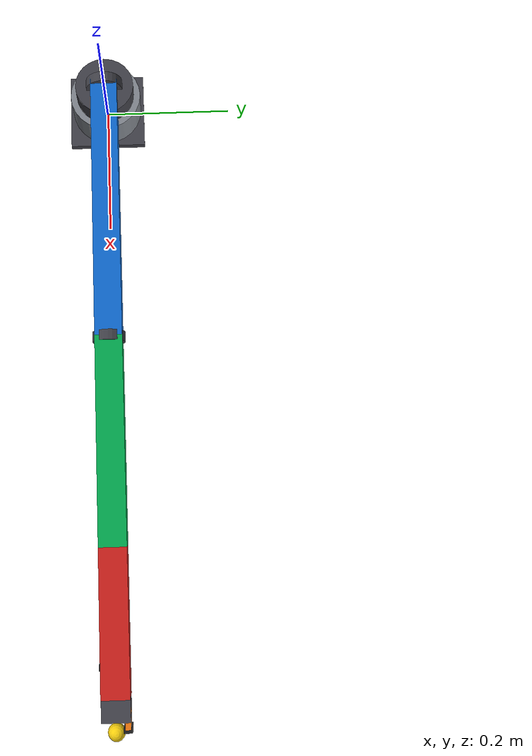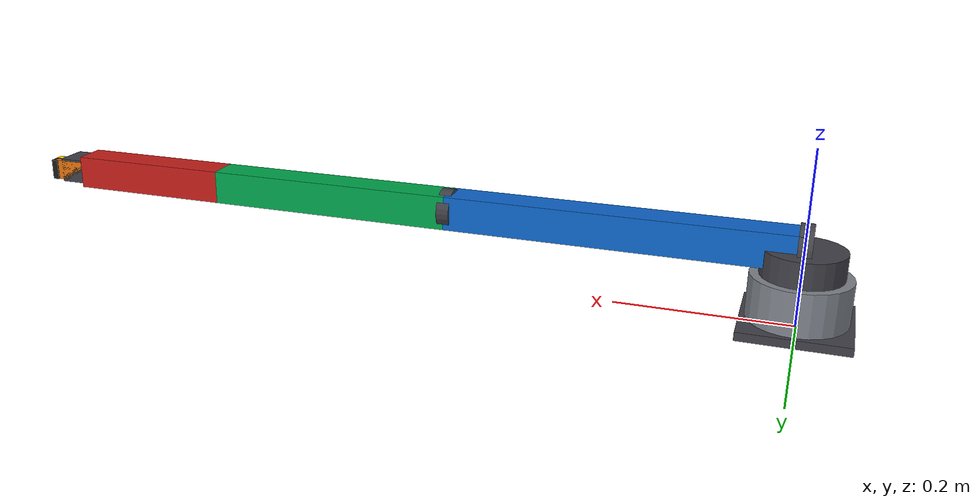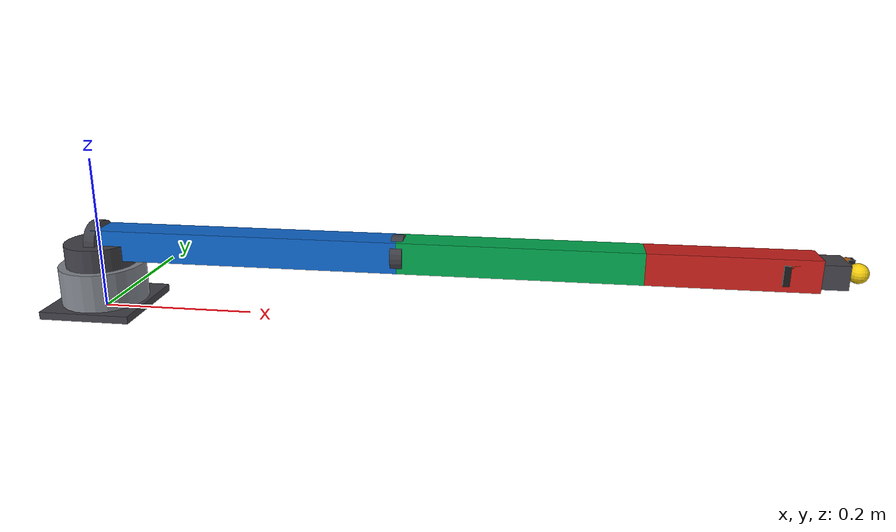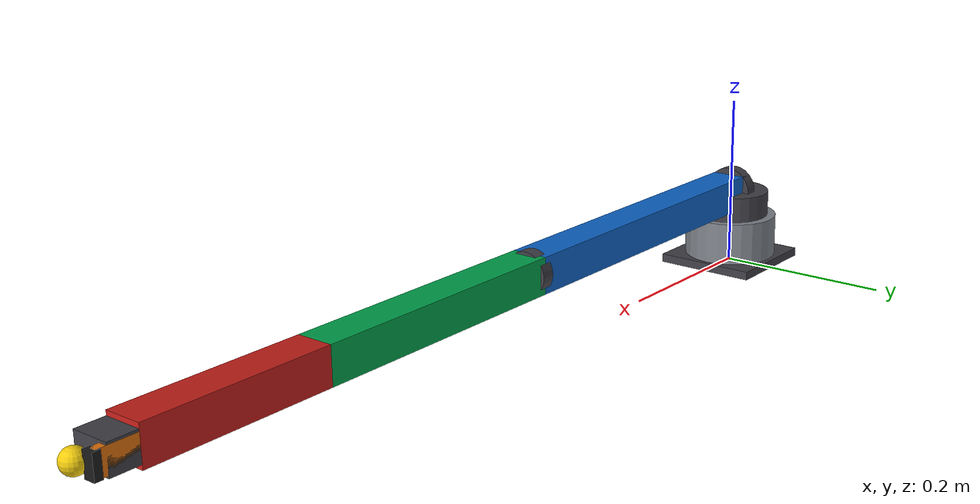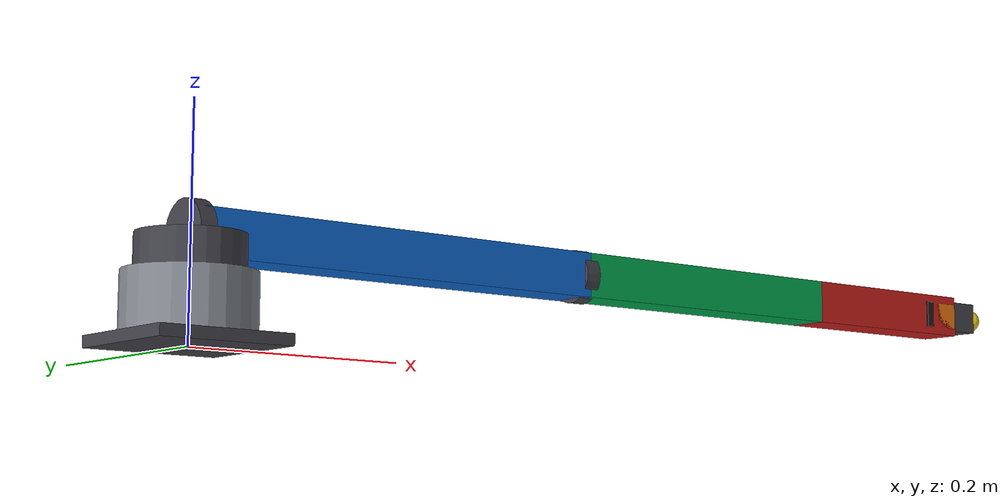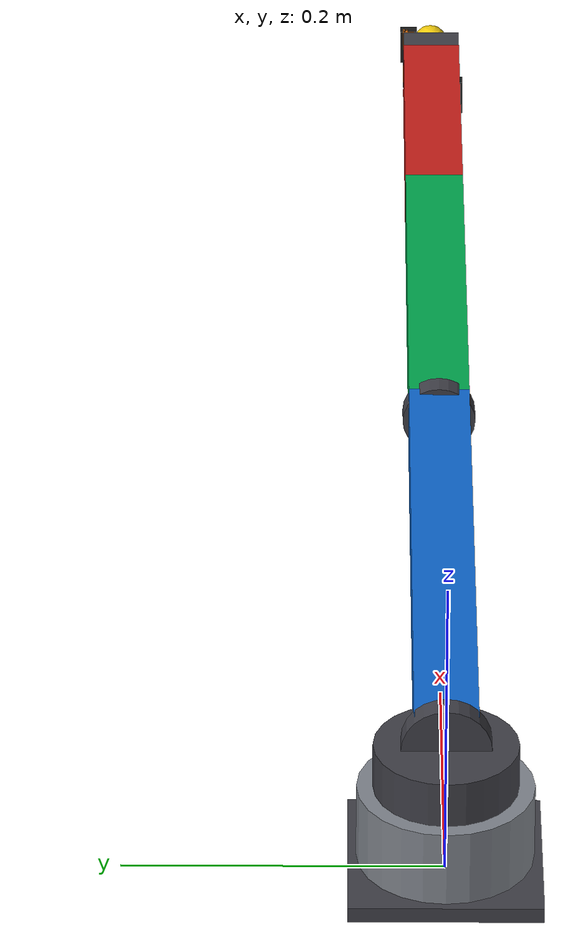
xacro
<?xml version="1.0"?>

<robot xmlns:xacro="http://www.ros.org/wiki/xacro" name="planar_arm">

  <!--  PARAMETERS (constants)                                          -->
  <!-- These are like variables. You can change one number here and    -->
  <!-- it updates everywhere else (e.g., all link lengths).            -->
  <xacro:property name="L1"        value="0.4"/>   <!-- Length of link 1 (0.4 m) -->
  <xacro:property name="L2"        value="0.3"/>   <!-- Length of link 2 (0.3 m) -->
  <xacro:property name="L3"        value="0.2"/>   <!-- Length of link 3 (0.2 m) -->
  <xacro:property name="W"         value="0.04"/>  <!-- Width of each arm beam (0.04 m) -->
  <xacro:property name="H"         value="0.04"/>  <!-- Height of each arm beam (0.04 m) -->
  <xacro:property name="joint_lim" value="3.14159"/> <!-- Joint limit in radians (180°) – not used directly, kept for reference -->
  <xacro:property name="mass_link1" value="0.5"/>   <!-- Mass of link 1 (kg) -->
  <xacro:property name="mass_link2" value="0.3"/>   <!-- Mass of link 2 (kg) -->
  <xacro:property name="mass_link3" value="0.15"/>  <!-- Mass of link 3 (kg) -->

  <!--  MACROS – reusable chunks of XML                                 -->

  <!-- MACRO: box_inertia                                                -->
  <!-- Creates an inertial block (mass + inertia matrix) for a box shape. -->
  <!-- Parameters:                                                       -->
  <!--   m = mass (kg)                                                   -->
  <!--   x, y, z = dimensions of the box (m)                             -->
  <!-- The inertia formulas are standard for a rectangular solid.        -->
  <xacro:macro name="box_inertia" params="m x y z">
    <inertial>
      <mass value="${m}"/>
      <inertia
        ixx="${m*(y*y+z*z)/12}" ixy="0.0" ixz="0.0"
        iyy="${m*(x*x+z*z)/12}" iyz="0.0"
        izz="${m*(x*x+y*y)/12}"/>
    </inertial>
  </xacro:macro>

  <!-- MACRO: cylinder_inertia                                            -->
  <!-- Creates an inertial block for a cylinder shape.                   -->
  <!-- Parameters: m = mass, r = radius, h = height (length).            -->
  <xacro:macro name="cylinder_inertia" params="m r h">
    <inertial>
      <mass value="${m}"/>
      <inertia
        ixx="${m*(3*r*r+h*h)/12}" ixy="0.0" ixz="0.0"
        iyy="${m*(3*r*r+h*h)/12}" iyz="0.0"
        izz="${m*r*r/2}"/>
    </inertial>
  </xacro:macro>

  <!--  MATERIALS – colours used for visual parts                       -->
  <!-- Each material has an RGBA colour (red, green, blue, alpha/opacity). -->
  <material name="dark_grey">  <color rgba="0.25 0.25 0.28 1.0"/> </material>
  <material name="steel_grey"> <color rgba="0.50 0.52 0.55 1.0"/> </material>
  <material name="blue">       <color rgba="0.05 0.40 0.80 1.0"/> </material>
  <material name="green">      <color rgba="0.00 0.65 0.30 1.0"/> </material>
  <material name="red">        <color rgba="0.78 0.12 0.10 1.0"/> </material>
  <material name="yellow">     <color rgba="0.95 0.80 0.05 1.0"/> </material>
  <material name="orange">     <color rgba="0.90 0.45 0.05 1.0"/> </material>
  <material name="black">      <color rgba="0.10 0.10 0.10 1.0"/> </material>
  <material name="white">      <color rgba="0.95 0.95 0.95 1.0"/> </material>

  <!--  BASE LINK – fixed base of the robot                             -->
  <!-- The base_link is the root frame. Everything else moves relative  -->
  <!-- to it. In RViz, you can set the fixed frame to base_link.        -->
  <link name="base_link">
    <!-- Visual elements (what you see in RViz) -->
    <visual>
      <!-- Mounting plate – a thin flat box at the bottom -->
      <origin xyz="0 0 0.005" rpy="0 0 0"/>
      <geometry><box size="0.12 0.12 0.01"/></geometry>
      <material name="dark_grey"/>
    </visual>
    <visual>
      <!-- Lower cylinder – the main vertical pillar -->
      <origin xyz="0 0 0.035" rpy="0 0 0"/>
      <geometry><cylinder radius="0.055" length="0.05"/></geometry>
      <material name="steel_grey"/>
    </visual>
    <visual>
      <!-- Upper bearing housing – where the first joint attaches -->
      <origin xyz="0 0 0.075" rpy="0 0 0"/>
      <geometry><cylinder radius="0.045" length="0.03"/></geometry>
      <material name="dark_grey"/>
    </visual>

    <!-- Collision elements (simplified shape for collision detection) -->
    <!-- This is used by simulators like Gazebo to check for overlaps. -->
    <collision>
      <origin xyz="0 0 0.045" rpy="0 0 0"/>
      <geometry><cylinder radius="0.060" length="0.090"/></geometry>
    </collision>

    <!-- Inertia (mass and moment of inertia) – needed for physics simulation -->
    <xacro:cylinder_inertia m="1.0" r="0.055" h="0.09"/>
  </link>

  <!--  LINK 1 (0.4 m, Blue) – first moving arm                         -->
  <link name="link_1">
    <visual>
      <!-- Main beam – a blue box that extends along the X axis -->
      <!-- Origin is at the centre of the box, so we shift by L1/2 -->
      <origin xyz="${L1/2} 0 0" rpy="0 0 0"/>
      <geometry><box size="${L1} ${W} ${H}"/></geometry>
      <material name="blue"/>
    </visual>
    <visual>
      <!-- Proximal joint disk – decorative cylinder at the start of the link -->
      <origin xyz="0 0 0" rpy="0 ${pi/2} 0"/>
      <geometry><cylinder radius="0.028" length="0.015"/></geometry>
      <material name="dark_grey"/>
    </visual>
    <visual>
      <!-- Distal joint disk – decorative cylinder at the end of the link -->
      <origin xyz="${L1} 0 0" rpy="0 ${pi/2} 0"/>
      <geometry><cylinder radius="0.024" length="0.015"/></geometry>
      <material name="dark_grey"/>
    </visual>

    <collision>
      <!-- Collision shape same as the main beam -->
      <origin xyz="${L1/2} 0 0" rpy="0 0 0"/>
      <geometry><box size="${L1} ${W} ${H}"/></geometry>
    </collision>

    <!-- Inertia using the box macro (mass = 0.5 kg) -->
    <xacro:box_inertia m="${mass_link1}" x="${L1}" y="${W}" z="${H}"/>
  </link>

  <!--  LINK 2 (0.3 m, Green) – second moving arm                       -->
  <link name="link_2">
    <!-- Same structure as link_1, but shorter and green -->
    <visual>
      <origin xyz="${L2/2} 0 0" rpy="0 0 0"/>
      <geometry><box size="${L2} ${W} ${H}"/></geometry>
      <material name="green"/>
    </visual>
    <visual>
      <origin xyz="0 0 0" rpy="0 ${pi/2} 0"/>
      <geometry><cylinder radius="0.024" length="0.015"/></geometry>
      <material name="dark_grey"/>
    </visual>
    <visual>
      <origin xyz="${L2} 0 0" rpy="0 ${pi/2} 0"/>
      <geometry><cylinder radius="0.020" length="0.015"/></geometry>
      <material name="dark_grey"/>
    </visual>
    <collision>
      <origin xyz="${L2/2} 0 0" rpy="0 0 0"/>
      <geometry><box size="${L2} ${W} ${H}"/></geometry>
    </collision>
    <xacro:box_inertia m="${mass_link2}" x="${L2}" y="${W}" z="${H}"/>
  </link>

  <!--  LINK 3 (0.2 m, Red) – third moving arm                          -->
  <link name="link_3">
    <!-- Shortest link, red -->
    <visual>
      <origin xyz="${L3/2} 0 0" rpy="0 0 0"/>
      <geometry><box size="${L3} ${W} ${H}"/></geometry>
      <material name="red"/>
    </visual>
    <visual>
      <!-- Only a proximal disk (the distal end attaches to gripper) -->
      <origin xyz="0 0 0" rpy="0 ${pi/2} 0"/>
      <geometry><cylinder radius="0.020" length="0.015"/></geometry>
      <material name="dark_grey"/>
    </visual>
    <collision>
      <origin xyz="${L3/2} 0 0" rpy="0 0 0"/>
      <geometry><box size="${L3} ${W} ${H}"/></geometry>
    </collision>
    <xacro:box_inertia m="${mass_link3}" x="${L3}" y="${W}" z="${H}"/>
  </link>

  <!--  GRIPPER BASE LINK – the wrist housing                           -->
  <link name="gripper_base">
    <visual>
      <!-- A small grey box representing the gripper body -->
      <origin xyz="0.015 0 0" rpy="0 0 0"/>
      <geometry><box size="0.03 0.04 0.03"/></geometry>
      <material name="dark_grey"/>
    </visual>
    <collision>
      <origin xyz="0.015 0 0" rpy="0 0 0"/>
      <geometry><box size="0.03 0.04 0.03"/></geometry>
    </collision>
    <xacro:box_inertia m="0.05" x="0.03" y="0.04" z="0.03"/>
  </link>

  <!--  GRIPPER FINGER LEFT – left movable finger                       -->
  <link name="gripper_finger_left">
    <visual>
      <!-- Main finger body -->
      <origin xyz="0.02 0 0" rpy="0 0 0"/>
      <geometry><box size="0.04 0.008 0.025"/></geometry>
      <material name="orange"/>
    </visual>
    <visual>
      <!-- Black fingertip pad for better visual -->
      <origin xyz="0.04 0 0" rpy="0 0 0"/>
      <geometry><box size="0.008 0.012 0.025"/></geometry>
      <material name="black"/>
    </visual>
    <collision>
      <origin xyz="0.02 0 0" rpy="0 0 0"/>
      <geometry><box size="0.04 0.008 0.025"/></geometry>
    </collision>
    <xacro:box_inertia m="0.02" x="0.04" y="0.008" z="0.025"/>
  </link>

  <!--  GRIPPER FINGER RIGHT – right movable finger                     -->
  <link name="gripper_finger_right">
    <!-- Same as left finger, but placed on the opposite side -->
    <visual>
      <origin xyz="0.02 0 0" rpy="0 0 0"/>
      <geometry><box size="0.04 0.008 0.025"/></geometry>
      <material name="orange"/>
    </visual>
    <visual>
      <origin xyz="0.04 0 0" rpy="0 0 0"/>
      <geometry><box size="0.008 0.012 0.025"/></geometry>
      <material name="black"/>
    </visual>
    <collision>
      <origin xyz="0.02 0 0" rpy="0 0 0"/>
      <geometry><box size="0.04 0.008 0.025"/></geometry>
    </collision>
    <xacro:box_inertia m="0.02" x="0.04" y="0.008" z="0.025"/>
  </link>

  <!--  END EFFECTOR FRAME – virtual marker for the tool tip            -->
  <!-- This is not a physical part; it's just a small sphere that helps -->
  <!-- visualise the exact point where the gripper would pick an object. -->
  <!-- Our FK node also broadcasts a separate "computed_end_effector"   -->
  <!-- frame that coincides with this point.                            -->
  <link name="end_effector">
    <visual>
      <origin xyz="0 0 0" rpy="0 0 0"/>
      <geometry><sphere radius="0.012"/></geometry>
      <material name="yellow"/>
    </visual>
  </link>

  <!--  JOINTS – how links are connected                                -->

  <!-- JOINT 1 – revolute (rotating) joint from base_link to link_1     -->
  <!-- Axis is Z (up), so the arm rotates in the horizontal (XY) plane. -->
  <joint name="joint_1" type="revolute">
    <parent link="base_link"/>
    <child  link="link_1"/>
    <!-- Position the joint at the top of base_link (0,0,0.09) -->
    <origin xyz="0 0 0.090" rpy="0 0 0"/>
    <axis xyz="0 0 1"/>   <!-- rotation around Z -->
    <!-- Limits: from -2.967 rad (-170°) to +2.967 rad (+170°) -->
    <limit lower="-2.967" upper="2.967" effort="20.0" velocity="2.0"/>
    <dynamics damping="0.5" friction="0.1"/>
  </joint>

  <!-- JOINT 2 – revolute from link_1 to link_2                         -->
  <!-- Attached at the end of link_1 (x = L1)                           -->
  <joint name="joint_2" type="revolute">
    <parent link="link_1"/>
    <child  link="link_2"/>
    <origin xyz="${L1} 0 0" rpy="0 0 0"/>
    <axis xyz="0 0 1"/>
    <limit lower="-2.268" upper="2.268" effort="15.0" velocity="2.0"/>
    <dynamics damping="0.4" friction="0.1"/>
  </joint>

  <!-- JOINT 3 – revolute from link_2 to link_3                         -->
  <joint name="joint_3" type="revolute">
    <parent link="link_2"/>
    <child  link="link_3"/>
    <origin xyz="${L2} 0 0" rpy="0 0 0"/>
    <axis xyz="0 0 1"/>
    <limit lower="-1.919" upper="1.919" effort="10.0" velocity="2.0"/>
    <dynamics damping="0.3" friction="0.05"/>
  </joint>

  <!-- FIXED JOINT: link_3 → gripper_base                                -->
  <!-- No movement; the gripper base is rigidly attached to link_3.     -->
  <joint name="gripper_base_joint" type="fixed">
    <parent link="link_3"/>
    <child  link="gripper_base"/>
    <origin xyz="${L3} 0 0" rpy="0 0 0"/>
  </joint>

  <!-- PRISMATIC JOINT: gripper_base → left finger                       -->
  <!-- This joint slides along Y axis, allowing the finger to open/close. -->
  <joint name="gripper_finger_left_joint" type="prismatic">
    <parent link="gripper_base"/>
    <child  link="gripper_finger_left"/>
    <!-- Start position: offset in +Y direction -->
    <origin xyz="0 0.016 0" rpy="0 0 0"/>
    <axis xyz="0 1 0"/>   <!-- slide along Y -->
    <limit lower="0.0" upper="0.025" effort="5.0" velocity="0.1"/>
    <dynamics damping="0.1" friction="0.05"/>
  </joint>

  <!-- PRISMATIC JOINT: gripper_base → right finger                      -->
  <!-- This finger mimics the left one: when left moves, right moves    -->
  <!-- equally in the opposite direction (because its axis is Y but the -->
  <joint name="gripper_finger_right_joint" type="prismatic">
    <parent link="gripper_base"/>
    <child  link="gripper_finger_right"/>
    <origin xyz="0 -0.016 0" rpy="0 0 ${pi}"/>  <!-- flipped 180° around Z -->
    <axis xyz="0 1 0"/>
    <limit lower="0.0" upper="0.025" effort="5.0" velocity="0.1"/>
    <dynamics damping="0.1" friction="0.05"/>
    <!-- Mimic the left joint: same displacement (multiplier=1) -->
    <mimic joint="gripper_finger_left_joint" multiplier="1" offset="0"/>
  </joint>

  <!-- FIXED JOINT: gripper_base → end_effector (virtual marker)         -->
  <!-- This places the yellow sphere at the tip of the gripper.         -->
  <joint name="ee_fixed" type="fixed">
    <parent link="gripper_base"/>
    <child  link="end_effector"/>
    <!-- Positioned 0.045 m forward from gripper_base's origin -->
    <origin xyz="0.045 0 0" rpy="0 0 0"/>
  </joint>

</robot>
